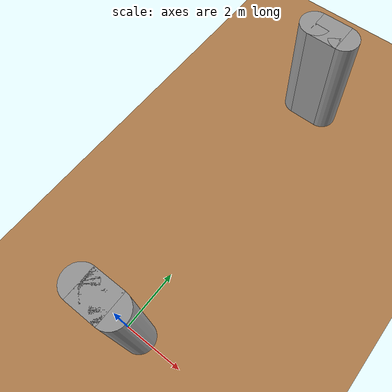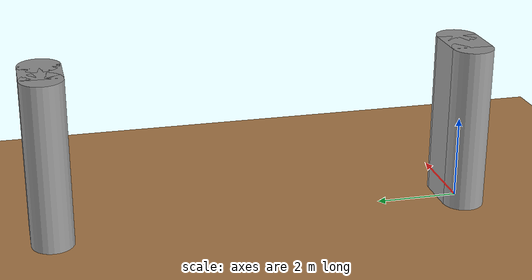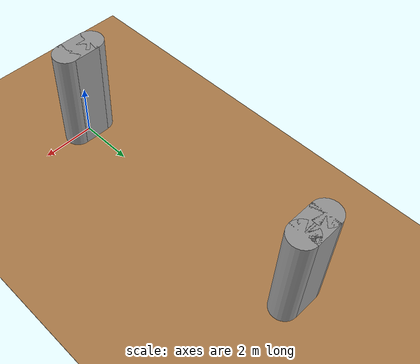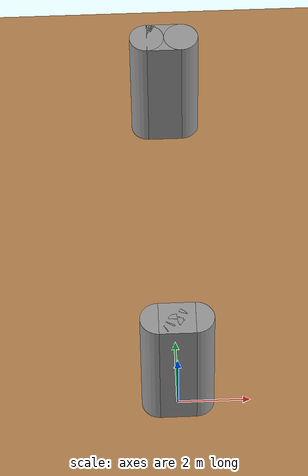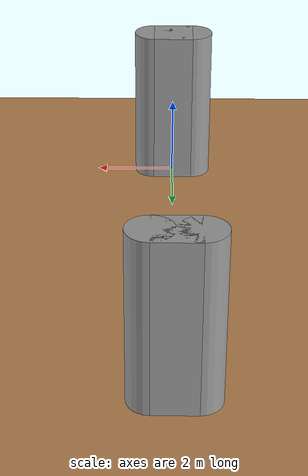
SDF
<sdf version="1.6">
 <world name="default">
  <model name="ground_plane">
   <static>1</static>
   <link name="link">
    <collision name="collision">
     <geometry><plane><normal>0 0 1</normal><size>100 100</size></plane></geometry>
     <surface><friction><ode><mu>100</mu><mu2>50</mu2></ode></friction></surface>
    </collision>
    <visual name="visual">
     <cast_shadows>0</cast_shadows>
     <geometry><plane><normal>0 0 1</normal><size>100 100</size></plane></geometry>
     <material>
      <script><uri>file://media/materials/scripts/gazebo.material</uri><name>Gazebo/Grey</name></script>
     </material>
    </visual>
   </link>
  </model>
  <model name="pillar_clone_6_clone_2">
   <link name="link_0">
    <inertial>
     <mass>1</mass>
     <inertia>
      <ixx>0.166667</ixx>
      <ixy>0</ixy>
      <ixz>0</ixz>
      <iyy>0.166667</iyy>
      <iyz>0</iyz>
      <izz>0.166667</izz>
     </inertia>
    </inertial>
    <kinematic>1</kinematic>
    <visual name="visual">
     <geometry><box><size>1 1 4</size></box></geometry>
     <material>
      <lighting>1</lighting>
      <script><uri>file://media/materials/scripts/gazebo.material</uri><name>Gazebo/Grey</name></script>
      <shader type="pixel"><normal_map>__default__</normal_map></shader>
      <ambient>0.3 0.3 0.3 1</ambient>
      <diffuse>0.7 0.7 0.7 1</diffuse>
      <specular>0.01 0.01 0.01 1</specular>
      <emissive>0 0 0 1</emissive>
     </material>
    </visual>
    <collision name="collision">
     <geometry><box><size>1 1 4</size></box></geometry>
     <surface>
      <friction>
       <ode><mu>1</mu><mu2>1</mu2><fdir1>0 0 0</fdir1><slip1>0</slip1><slip2>0</slip2></ode>
       <torsional>
        <coefficient>1</coefficient>
        <patch_radius>0</patch_radius>
        <surface_radius>0</surface_radius>
        <use_patch_radius>1</use_patch_radius>
        <ode><slip>0</slip></ode>
       </torsional>
      </friction>
      <bounce><restitution_coefficient>0</restitution_coefficient><threshold>1e+06</threshold></bounce>
      <contact>
       <collide_without_contact>0</collide_without_contact>
       <collide_without_contact_bitmask>1</collide_without_contact_bitmask>
       <collide_bitmask>1</collide_bitmask>
       <ode>
        <soft_cfm>0</soft_cfm>
        <soft_erp>0.2</soft_erp>
        <kp>1e+13</kp>
        <kd>1</kd>
        <max_vel>0.01</max_vel>
        <min_depth>0</min_depth>
       </ode>
       <bullet>
        <split_impulse>1</split_impulse>
        <split_impulse_penetration_threshold>-0.01</split_impulse_penetration_threshold>
        <soft_cfm>0</soft_cfm>
        <soft_erp>0.2</soft_erp>
        <kp>1e+13</kp>
        <kd>1</kd>
       </bullet>
      </contact>
     </surface>
    </collision>
   </link>
   <link name="link_1">
    <inertial>
     <mass>1</mass>
     <inertia><ixx>0.145833</ixx><ixy>0</ixy><ixz>0</ixz><iyy>0.145833</iyy><iyz>0</iyz><izz>0.125</izz></inertia>
    </inertial>
    <pose>-0.5 0 0 0 -0 0</pose>
    <kinematic>1</kinematic>
    <visual name="visual">
     <geometry><cylinder><radius>0.5</radius><length>4</length></cylinder></geometry>
     <material>
      <lighting>1</lighting>
      <script><uri>file://media/materials/scripts/gazebo.material</uri><name>Gazebo/Grey</name></script>
      <shader type="pixel"><normal_map>__default__</normal_map></shader>
      <ambient>0.3 0.3 0.3 1</ambient>
      <diffuse>0.7 0.7 0.7 1</diffuse>
      <specular>0.01 0.01 0.01 1</specular>
      <emissive>0 0 0 1</emissive>
     </material>
    </visual>
    <collision name="collision">
     <geometry><cylinder><radius>0.5</radius><length>4</length></cylinder></geometry>
     <surface>
      <friction>
       <ode><mu>1</mu><mu2>1</mu2><fdir1>0 0 0</fdir1><slip1>0</slip1><slip2>0</slip2></ode>
       <torsional>
        <coefficient>1</coefficient>
        <patch_radius>0</patch_radius>
        <surface_radius>0</surface_radius>
        <use_patch_radius>1</use_patch_radius>
        <ode><slip>0</slip></ode>
       </torsional>
      </friction>
      <bounce><restitution_coefficient>0</restitution_coefficient><threshold>1e+06</threshold></bounce>
      <contact>
       <collide_without_contact>0</collide_without_contact>
       <collide_without_contact_bitmask>1</collide_without_contact_bitmask>
       <collide_bitmask>1</collide_bitmask>
       <ode>
        <soft_cfm>0</soft_cfm>
        <soft_erp>0.2</soft_erp>
        <kp>1e+13</kp>
        <kd>1</kd>
        <max_vel>0.01</max_vel>
        <min_depth>0</min_depth>
       </ode>
       <bullet>
        <split_impulse>1</split_impulse>
        <split_impulse_penetration_threshold>-0.01</split_impulse_penetration_threshold>
        <soft_cfm>0</soft_cfm>
        <soft_erp>0.2</soft_erp>
        <kp>1e+13</kp>
        <kd>1</kd>
       </bullet>
      </contact>
     </surface>
    </collision>
   </link>
   <link name="link_2">
    <inertial>
     <mass>1</mass>
     <inertia><ixx>0.145833</ixx><ixy>0</ixy><ixz>0</ixz><iyy>0.145833</iyy><iyz>0</iyz><izz>0.125</izz></inertia>
    </inertial>
    <pose>0.5 0 0 0 -0 0</pose>
    <kinematic>1</kinematic>
    <visual name="visual">
     <geometry><cylinder><radius>0.5</radius><length>4</length></cylinder></geometry>
     <material>
      <lighting>1</lighting>
      <script><uri>file://media/materials/scripts/gazebo.material</uri><name>Gazebo/Grey</name></script>
      <shader type="pixel"><normal_map>__default__</normal_map></shader>
      <ambient>0.3 0.3 0.3 1</ambient>
      <diffuse>0.7 0.7 0.7 1</diffuse>
      <specular>0.01 0.01 0.01 1</specular>
      <emissive>0 0 0 1</emissive>
     </material>
    </visual>
    <collision name="collision">
     <geometry><cylinder><radius>0.5</radius><length>4</length></cylinder></geometry>
     <surface>
      <friction>
       <ode><mu>1</mu><mu2>1</mu2><fdir1>0 0 0</fdir1><slip1>0</slip1><slip2>0</slip2></ode>
       <torsional>
        <coefficient>1</coefficient>
        <patch_radius>0</patch_radius>
        <surface_radius>0</surface_radius>
        <use_patch_radius>1</use_patch_radius>
        <ode><slip>0</slip></ode>
       </torsional>
      </friction>
      <bounce><restitution_coefficient>0</restitution_coefficient><threshold>1e+06</threshold></bounce>
      <contact>
       <collide_without_contact>0</collide_without_contact>
       <collide_without_contact_bitmask>1</collide_without_contact_bitmask>
       <collide_bitmask>1</collide_bitmask>
       <ode>
        <soft_cfm>0</soft_cfm>
        <soft_erp>0.2</soft_erp>
        <kp>1e+13</kp>
        <kd>1</kd>
        <max_vel>0.01</max_vel>
        <min_depth>0</min_depth>
       </ode>
       <bullet>
        <split_impulse>1</split_impulse>
        <split_impulse_penetration_threshold>-0.01</split_impulse_penetration_threshold>
        <soft_cfm>0</soft_cfm>
        <soft_erp>0.2</soft_erp>
        <kp>1e+13</kp>
        <kd>1</kd>
       </bullet>
      </contact>
     </surface>
    </collision>
   </link>
   <static>1</static>
   <pose>0 0 2 0 -0 0</pose>
  </model>
  <model name="pillar_clone_6_clone_16">
   <link name="link_0">
    <inertial>
     <mass>1</mass>
     <inertia>
      <ixx>0.166667</ixx>
      <ixy>0</ixy>
      <ixz>0</ixz>
      <iyy>0.166667</iyy>
      <iyz>0</iyz>
      <izz>0.166667</izz>
     </inertia>
    </inertial>
    <kinematic>1</kinematic>
    <visual name="visual">
     <geometry><box><size>1 1 4</size></box></geometry>
     <material>
      <lighting>1</lighting>
      <script><uri>file://media/materials/scripts/gazebo.material</uri><name>Gazebo/Grey</name></script>
      <shader type="pixel"><normal_map>__default__</normal_map></shader>
      <ambient>0.3 0.3 0.3 1</ambient>
      <diffuse>0.7 0.7 0.7 1</diffuse>
      <specular>0.01 0.01 0.01 1</specular>
      <emissive>0 0 0 1</emissive>
     </material>
    </visual>
    <collision name="collision">
     <geometry><box><size>1 1 4</size></box></geometry>
     <surface>
      <friction>
       <ode><mu>1</mu><mu2>1</mu2><fdir1>0 0 0</fdir1><slip1>0</slip1><slip2>0</slip2></ode>
       <torsional>
        <coefficient>1</coefficient>
        <patch_radius>0</patch_radius>
        <surface_radius>0</surface_radius>
        <use_patch_radius>1</use_patch_radius>
        <ode><slip>0</slip></ode>
       </torsional>
      </friction>
      <bounce><restitution_coefficient>0</restitution_coefficient><threshold>1e+06</threshold></bounce>
      <contact>
       <collide_without_contact>0</collide_without_contact>
       <collide_without_contact_bitmask>1</collide_without_contact_bitmask>
       <collide_bitmask>1</collide_bitmask>
       <ode>
        <soft_cfm>0</soft_cfm>
        <soft_erp>0.2</soft_erp>
        <kp>1e+13</kp>
        <kd>1</kd>
        <max_vel>0.01</max_vel>
        <min_depth>0</min_depth>
       </ode>
       <bullet>
        <split_impulse>1</split_impulse>
        <split_impulse_penetration_threshold>-0.01</split_impulse_penetration_threshold>
        <soft_cfm>0</soft_cfm>
        <soft_erp>0.2</soft_erp>
        <kp>1e+13</kp>
        <kd>1</kd>
       </bullet>
      </contact>
     </surface>
    </collision>
   </link>
   <link name="link_1">
    <inertial>
     <mass>1</mass>
     <inertia><ixx>0.145833</ixx><ixy>0</ixy><ixz>0</ixz><iyy>0.145833</iyy><iyz>0</iyz><izz>0.125</izz></inertia>
    </inertial>
    <pose>-0.5 0 0 0 -0 0</pose>
    <kinematic>1</kinematic>
    <visual name="visual">
     <geometry><cylinder><radius>0.5</radius><length>4</length></cylinder></geometry>
     <material>
      <lighting>1</lighting>
      <script><uri>file://media/materials/scripts/gazebo.material</uri><name>Gazebo/Grey</name></script>
      <shader type="pixel"><normal_map>__default__</normal_map></shader>
      <ambient>0.3 0.3 0.3 1</ambient>
      <diffuse>0.7 0.7 0.7 1</diffuse>
      <specular>0.01 0.01 0.01 1</specular>
      <emissive>0 0 0 1</emissive>
     </material>
    </visual>
    <collision name="collision">
     <geometry><cylinder><radius>0.5</radius><length>4</length></cylinder></geometry>
     <surface>
      <friction>
       <ode><mu>1</mu><mu2>1</mu2><fdir1>0 0 0</fdir1><slip1>0</slip1><slip2>0</slip2></ode>
       <torsional>
        <coefficient>1</coefficient>
        <patch_radius>0</patch_radius>
        <surface_radius>0</surface_radius>
        <use_patch_radius>1</use_patch_radius>
        <ode><slip>0</slip></ode>
       </torsional>
      </friction>
      <bounce><restitution_coefficient>0</restitution_coefficient><threshold>1e+06</threshold></bounce>
      <contact>
       <collide_without_contact>0</collide_without_contact>
       <collide_without_contact_bitmask>1</collide_without_contact_bitmask>
       <collide_bitmask>1</collide_bitmask>
       <ode>
        <soft_cfm>0</soft_cfm>
        <soft_erp>0.2</soft_erp>
        <kp>1e+13</kp>
        <kd>1</kd>
        <max_vel>0.01</max_vel>
        <min_depth>0</min_depth>
       </ode>
       <bullet>
        <split_impulse>1</split_impulse>
        <split_impulse_penetration_threshold>-0.01</split_impulse_penetration_threshold>
        <soft_cfm>0</soft_cfm>
        <soft_erp>0.2</soft_erp>
        <kp>1e+13</kp>
        <kd>1</kd>
       </bullet>
      </contact>
     </surface>
    </collision>
   </link>
   <link name="link_2">
    <inertial>
     <mass>1</mass>
     <inertia><ixx>0.145833</ixx><ixy>0</ixy><ixz>0</ixz><iyy>0.145833</iyy><iyz>0</iyz><izz>0.125</izz></inertia>
    </inertial>
    <pose>0.5 0 0 0 -0 0</pose>
    <kinematic>1</kinematic>
    <visual name="visual">
     <geometry><cylinder><radius>0.5</radius><length>4</length></cylinder></geometry>
     <material>
      <lighting>1</lighting>
      <script><uri>file://media/materials/scripts/gazebo.material</uri><name>Gazebo/Grey</name></script>
      <shader type="pixel"><normal_map>__default__</normal_map></shader>
      <ambient>0.3 0.3 0.3 1</ambient>
      <diffuse>0.7 0.7 0.7 1</diffuse>
      <specular>0.01 0.01 0.01 1</specular>
      <emissive>0 0 0 1</emissive>
     </material>
    </visual>
    <collision name="collision">
     <geometry><cylinder><radius>0.5</radius><length>4</length></cylinder></geometry>
     <surface>
      <friction>
       <ode><mu>1</mu><mu2>1</mu2><fdir1>0 0 0</fdir1><slip1>0</slip1><slip2>0</slip2></ode>
       <torsional>
        <coefficient>1</coefficient>
        <patch_radius>0</patch_radius>
        <surface_radius>0</surface_radius>
        <use_patch_radius>1</use_patch_radius>
        <ode><slip>0</slip></ode>
       </torsional>
      </friction>
      <bounce><restitution_coefficient>0</restitution_coefficient><threshold>1e+06</threshold></bounce>
      <contact>
       <collide_without_contact>0</collide_without_contact>
       <collide_without_contact_bitmask>1</collide_without_contact_bitmask>
       <collide_bitmask>1</collide_bitmask>
       <ode>
        <soft_cfm>0</soft_cfm>
        <soft_erp>0.2</soft_erp>
        <kp>1e+13</kp>
        <kd>1</kd>
        <max_vel>0.01</max_vel>
        <min_depth>0</min_depth>
       </ode>
       <bullet>
        <split_impulse>1</split_impulse>
        <split_impulse_penetration_threshold>-0.01</split_impulse_penetration_threshold>
        <soft_cfm>0</soft_cfm>
        <soft_erp>0.2</soft_erp>
        <kp>1e+13</kp>
        <kd>1</kd>
       </bullet>
      </contact>
     </surface>
    </collision>
   </link>
   <static>1</static>
   <pose>0 10 2 0 -0 0</pose>
  </model>
  <model name="floor">
   <static>1</static>
   <link name="link">
    <visual name="visual">
     <geometry><mesh><uri>model://floor/meshes/floor.dae</uri></mesh></geometry>
     <material>
      <lighting>1</lighting>
      <script><uri>file://media/materials/scripts/gazebo.material</uri><name>Gazebo/Wood</name></script>
      <shader type="pixel"><normal_map>__default__</normal_map></shader>
     </material>
    </visual>
   </link>
   <pose>0 0 0.01 0 -0 0</pose>
  </model>
 </world>
</sdf>
